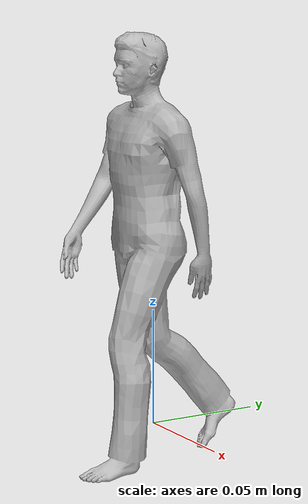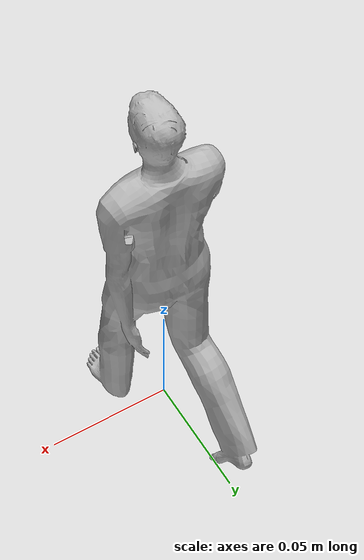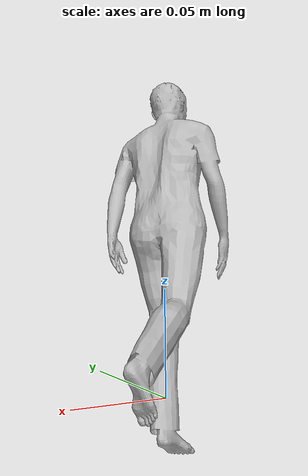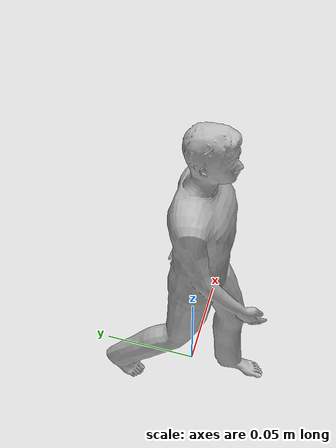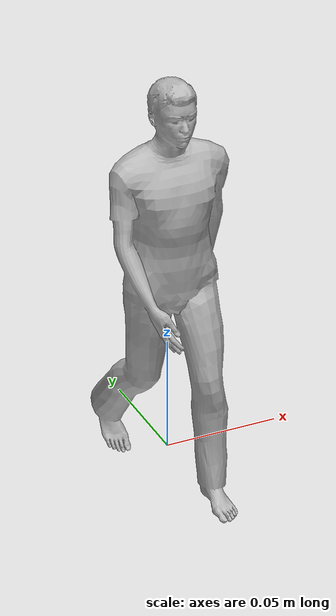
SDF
<?xml version="1.0" ?>
<sdf version="1.5">
  <model name="person_walking">
  <static>true</static>
    <link name="link">
      <inertial>
        <pose>0 0 0.95 0 0 0</pose>
        <mass>80.0</mass>
        <inertia>
          <ixx>27.82</ixx>
          <ixy>0</ixy>
          <ixz>0</ixz>
          <iyy>24.88</iyy>
          <iyz>0</iyz>
          <izz>4.57</izz>
        </inertia>
      </inertial>

      <collision name="person">
        <pose>0 0 -0.02 0 0 0</pose>
        <geometry>
          <mesh>
            <uri>model://person_walking/meshes/walking.dae</uri>
            <scale>0.1 0.1 0.1</scale>
          </mesh>
        </geometry>
      </collision>

      <visual name="visual">
        <pose>0 0 -0.02 0 0 0</pose>
        <geometry>
          <mesh>
            <uri>model://person_walking/meshes/walking.dae</uri>
            <scale>0.1 0.1 0.1</scale>
          </mesh>
        </geometry>
      </visual>
    </link>
  </model>
</sdf>
